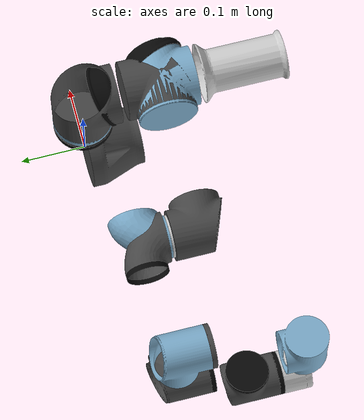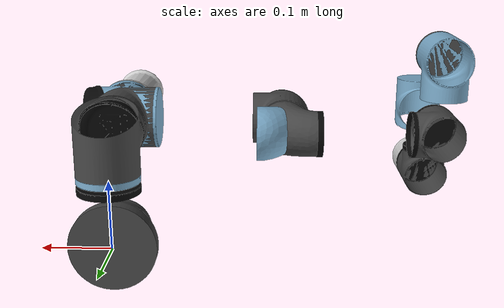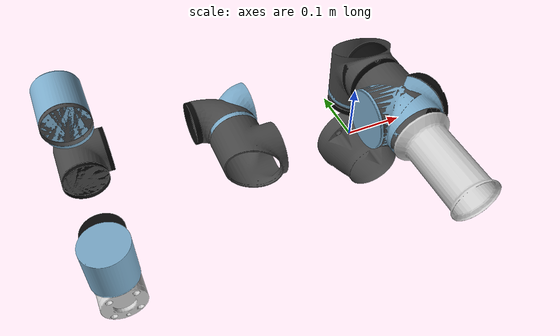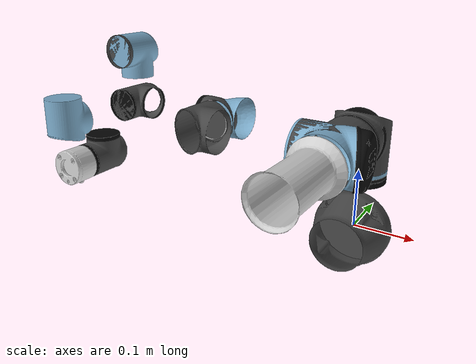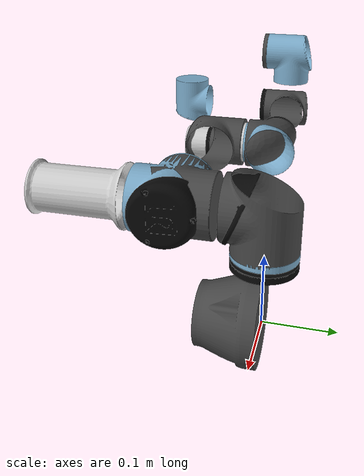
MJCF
<mujoco model="ur3e">
  <compiler angle="radian" meshdir="assets" autolimits="true"/>

  <option integrator="implicitfast"/>

  <default>
    <default class="ur3e">
      <material specular="0.5" shininess="0.25"/>
      <joint axis="0 1 0" range="-6.28319 6.28319" armature="0.1"/>
      <general gaintype="fixed" biastype="affine" ctrlrange="-6.2831 6.2831" gainprm="1000" biasprm="0 -1000 -200"/>
      <default class="size2">
        <general forcerange="-54 54"/>
      </default>
      <default class="size1">
        <default class="size1_limited">
          <joint range="-3.1415 3.1415"/>
          <general gainprm="500" biasprm="0 -500 -100" ctrlrange="-3.1415 3.1415" forcerange="-28 28"/>
        </default>
      </default>
      <default class="size0">
        <general gainprm="250" biasprm="0 -250 -50" forcerange="-9 9"/>
      </default>
      <default class="visual">
        <geom type="mesh" contype="0" conaffinity="0" group="2"/>
      </default>
      <default class="collision">
        <geom type="capsule" group="3"/>
        <default class="eef_collision">
          <geom type="cylinder"/>
        </default>
      </default>
      <site size="0.001" rgba="0.5 0.5 0.5 0.3" group="4"/>
    </default>
  </default>

  <asset>
    <material class="ur3e" name="black" rgba="0.033 0.033 0.033 1"/>
    <material class="ur3e" name="jointgray" rgba="0.278 0.278 0.278 1"/>
    <material class="ur3e" name="linkgray" rgba="0.82 0.82 0.82 1"/>
    <material class="ur3e" name="urblue" rgba="0.49 0.678 0.8 1"/>

    <mesh file="base_0.obj"/>
    <mesh file="base_1.obj"/>
    <mesh file="shoulder_0.obj"/>
    <mesh file="shoulder_1.obj"/>
    <mesh file="shoulder_2.obj"/>
    <mesh file="upperarm_0.obj"/>
    <mesh file="upperarm_1.obj"/>
    <mesh file="upperarm_2.obj"/>
    <mesh file="upperarm_3.obj"/>
    <mesh file="forearm_0.obj"/>
    <mesh file="forearm_1.obj"/>
    <mesh file="forearm_2.obj"/>
    <mesh file="forearm_3.obj"/>
    <mesh file="wrist1_0.obj"/>
    <mesh file="wrist1_1.obj"/>
    <mesh file="wrist1_2.obj"/>
    <mesh file="wrist2_0.obj"/>
    <mesh file="wrist2_1.obj"/>
    <mesh file="wrist2_2.obj"/>
    <mesh file="wrist3.obj"/>
  </asset>

  <worldbody>
    <light name="spotlight" mode="targetbodycom" target="wrist_2_link" pos="0 -1 2"/>
    <body name="base" quat="0 0 0 -1" childclass="ur3e">
      <inertial mass="2.0" pos="0 0 0" diaginertia="0.0030531654454 0.0030531654454 0.005625"/>
      <geom mesh="base_0" material="black" class="visual"/>
      <geom mesh="base_1" material="jointgray" class="visual"/>
      <body name="shoulder_link" pos="0 0 0.163">
        <inertial mass="2.0" pos="0 0 0" diaginertia="0.008093163429399999 0.008093163429399999 0.005625"/>
        <joint name="shoulder_pan_joint" class="size2" axis="0 0 1"/>
        <geom mesh="shoulder_0" material="urblue" class="visual"/>
        <geom mesh="shoulder_1" material="black" class="visual"/>
        <geom mesh="shoulder_2" material="jointgray" class="visual"/>
        <geom class="collision" size="0.05 0.05" pos="0 0 -0.04"/>
        <body name="upper_arm_link" pos="0 0.12 0" quat="1 0 1 0">
          <inertial mass="3.42" pos="0 0 0.121825" diaginertia="0.021728483221103233 0.021728483221103233 0.00961875"/>
          <joint name="shoulder_lift_joint" class="size2"/>
          <geom mesh="upperarm_0" material="black" class="visual"/>
          <geom mesh="upperarm_1" material="urblue" class="visual"/>
          <geom mesh="upperarm_2" material="jointgray" class="visual"/>
          <geom mesh="upperarm_3" material="linkgray" class="visual"/>
          <geom class="collision" pos="0 -0.04 0" quat="1 1 0 0" size="0.05 0.05"/>
          <geom class="collision" size="0.04 0.1" pos="0 0 0.1"/>
          <body name="forearm_link" pos="0 -0.093 0.24355">
            <inertial mass="1.26" pos="0 0 0.1066" diaginertia="0.0065445675821719194 0.0065445675821719194 0.00354375"/>
            <joint name="elbow_joint" class="size1_limited"/>
            <geom mesh="forearm_0" material="urblue" class="visual"/>
            <geom mesh="forearm_1" material="linkgray" class="visual"/>
            <geom mesh="forearm_2" material="black" class="visual"/>
            <geom mesh="forearm_3" material="jointgray" class="visual"/>
            <geom class="collision" pos="0 0.06 0" quat="1 1 0 0" size="0.04 0.052"/>
            <geom class="collision" size="0.03 0.1" pos="0 0 0.1"/>
            <body name="wrist_1_link" pos="0 0 0.2132" quat="1 0 1 0">
              <inertial mass="0.8" pos="0 0.104 0" diaginertia="0.002084999166 0.002084999166 0.00225"/>
              <joint name="wrist_1_joint" class="size0"/>
              <geom mesh="wrist1_0" material="black" class="visual"/>
              <geom mesh="wrist1_1" material="urblue" class="visual"/>
              <geom mesh="wrist1_2" material="jointgray" class="visual"/>
              <geom class="collision" pos="0 0.03 0" quat="1 1 0 0" size="0.032 0.045"/>
              <body name="wrist_2_link" pos="0 0.104 0">
                <inertial mass="0.8" pos="0 0 0.1" diaginertia="0.002084999166 0.002084999166 0.00225"/>
                <joint name="wrist_2_joint" axis="0 0 1" class="size0"/>
                <geom mesh="wrist2_0" material="urblue" class="visual"/>
                <geom mesh="wrist2_1" material="black" class="visual"/>
                <geom mesh="wrist2_2" material="jointgray" class="visual"/>
                <geom class="collision" size="0.032 0.045" pos="0 0 0.025"/>
                <geom class="collision" pos="0 0.015 0.085" quat="1 1 0 0" size="0.032 0.035"/>
                <body name="wrist_3_link" pos="0 0 0.08535">
                  <inertial mass="0.35" pos="0 0.0771683 0" quat="1 0 0 1"
                    diaginertia="0.00013626661215999998 0.00013626661215999998 0.0001792"/>
                  <joint name="wrist_3_joint" class="size0"/>
                  <geom material="linkgray" mesh="wrist3" class="visual"/>
                  <geom class="eef_collision" pos="0 0.072 0" quat="1 1 0 0" size="0.032 0.02"/>

                  <body name="tool0_link" pos="0 0.1 0" quat="-1 1 0 0">
                    <site name="attachment_site" pos="0 0 0" quat="1 0.0 0.0 0.0"/>
                    <site name="eef_site" pos="0 0 0.05" quat="0 0.7071068 -0.7071068 0"/>
                  </body>

                  <body name="camera_link" pos="0.1 0.05 0" quat=" 0.430  0.561 -0.430  0.561">
                    <camera name="hand_camera"  mode="fixed" fovy="42.5" />
                  </body>

                </body>
              </body>
            </body>
          </body>
        </body>
      </body>
    </body>
  </worldbody>

  <actuator>
  </actuator>

</mujoco>
